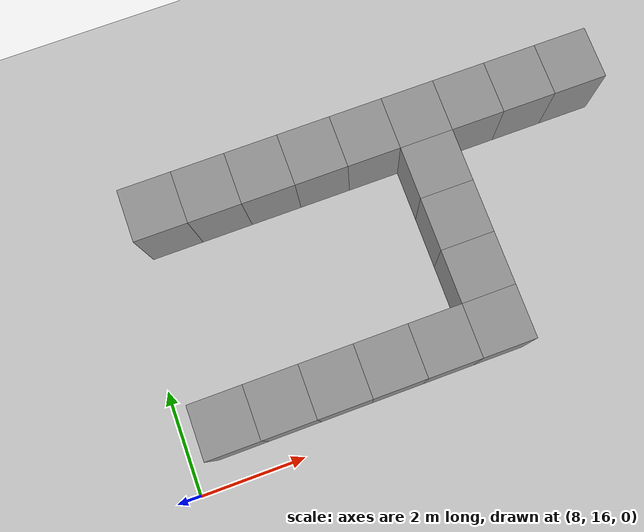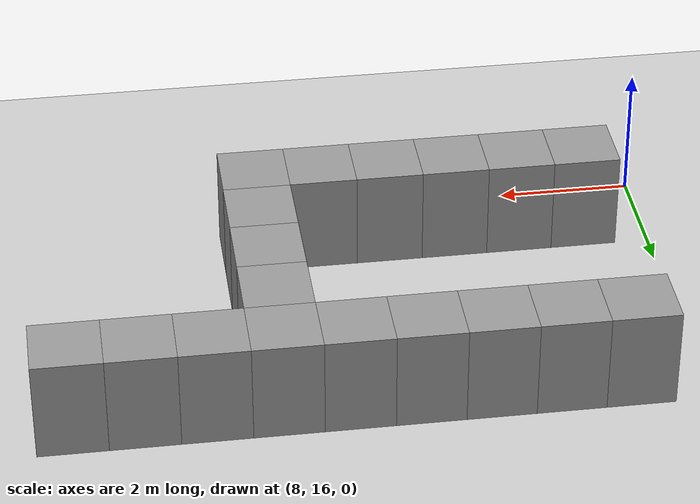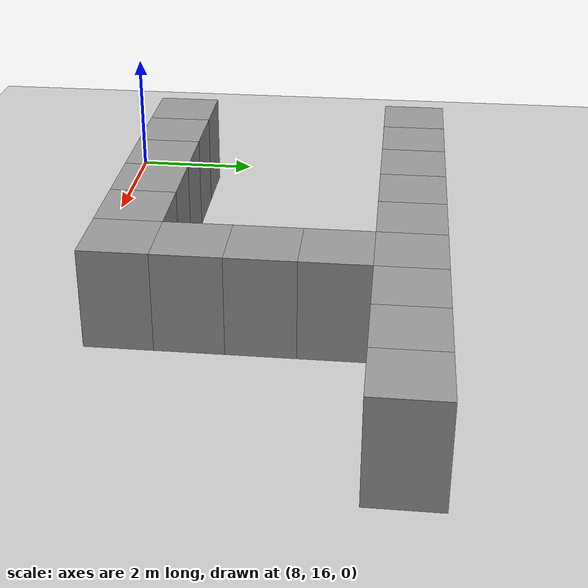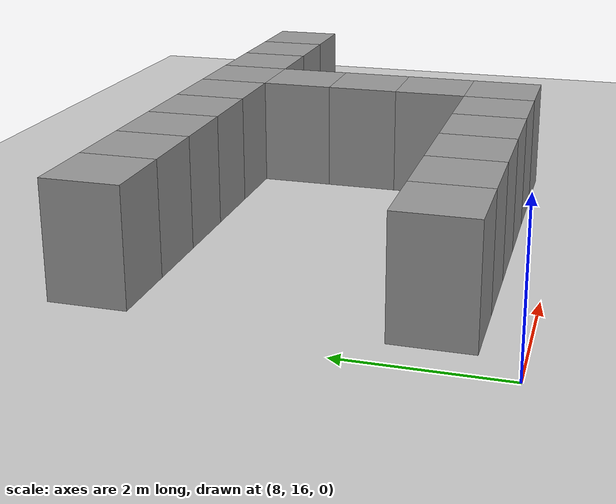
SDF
<sdf version="1.4">
 <world name="default">
  <model name="ground_plane">
   <static>1</static>
   <link name="link">
    <collision name="collision">
     <geometry><plane><normal>0 0 1</normal><size>100 100</size></plane></geometry>
     <surface><friction><ode><mu>100</mu><mu2>50</mu2></ode></friction></surface>
    </collision>
    <visual name="visual">
     <cast_shadows>0</cast_shadows>
     <geometry><plane><normal>0 0 1</normal><size>100 100</size></plane></geometry>
     <material>
      <script><uri>file://media/materials/scripts/gazebo.material</uri><name>Gazebo/Grey</name></script>
     </material>
    </visual>
    <velocity_decay><linear>0</linear><angular>0</angular></velocity_decay>
   </link>
  </model>
  <model name="unit_box_95">
   <pose>9 17 0.5 0 0 -3e-06</pose>
   <static>true</static>
   <link name="link">
    <inertial>
     <mass>1</mass>
     <inertia><ixx>1</ixx><ixy>0</ixy><ixz>0</ixz><iyy>1</iyy><iyz>0</iyz><izz>1</izz></inertia>
    </inertial>
    <collision name="collision"><geometry><box><size>1 1 2</size></box></geometry></collision>
    <visual name="visual">
     <geometry><box><size>1 1 2</size></box></geometry>
     <material>
      <script><uri>file://media/materials/scripts/gazebo.material</uri><name>Gazebo/Grey</name></script>
     </material>
    </visual>
    <velocity_decay><linear>0</linear><angular>0</angular></velocity_decay>
   </link>
   <static>0</static>
  </model>
  <model name="unit_box_112">
   <pose>9 21 0.5 0 -0 3e-06</pose>
   <static>true</static>
   <link name="link">
    <inertial>
     <mass>1</mass>
     <inertia><ixx>1</ixx><ixy>0</ixy><ixz>0</ixz><iyy>1</iyy><iyz>0</iyz><izz>1</izz></inertia>
    </inertial>
    <collision name="collision"><geometry><box><size>1 1 2</size></box></geometry></collision>
    <visual name="visual">
     <geometry><box><size>1 1 2</size></box></geometry>
     <material>
      <script><uri>file://media/materials/scripts/gazebo.material</uri><name>Gazebo/Grey</name></script>
     </material>
    </visual>
    <velocity_decay><linear>0</linear><angular>0</angular></velocity_decay>
   </link>
   <static>0</static>
  </model>
  <model name="unit_box_113">
   <pose>10 21 0.5 0 -0 1e-06</pose>
   <static>true</static>
   <link name="link">
    <inertial>
     <mass>1</mass>
     <inertia><ixx>1</ixx><ixy>0</ixy><ixz>0</ixz><iyy>1</iyy><iyz>0</iyz><izz>1</izz></inertia>
    </inertial>
    <collision name="collision"><geometry><box><size>1 1 2</size></box></geometry></collision>
    <visual name="visual">
     <geometry><box><size>1 1 2</size></box></geometry>
     <material>
      <script><uri>file://media/materials/scripts/gazebo.material</uri><name>Gazebo/Grey</name></script>
     </material>
    </visual>
    <velocity_decay><linear>0</linear><angular>0</angular></velocity_decay>
   </link>
   <static>0</static>
  </model>
  <model name="unit_box_114">
   <pose>11 21 0.5 0 -0 1e-06</pose>
   <static>true</static>
   <link name="link">
    <inertial>
     <mass>1</mass>
     <inertia><ixx>1</ixx><ixy>0</ixy><ixz>0</ixz><iyy>1</iyy><iyz>0</iyz><izz>1</izz></inertia>
    </inertial>
    <collision name="collision"><geometry><box><size>1 1 2</size></box></geometry></collision>
    <visual name="visual">
     <geometry><box><size>1 1 2</size></box></geometry>
     <material>
      <script><uri>file://media/materials/scripts/gazebo.material</uri><name>Gazebo/Grey</name></script>
     </material>
    </visual>
    <velocity_decay><linear>0</linear><angular>0</angular></velocity_decay>
   </link>
   <static>0</static>
  </model>
  <model name="unit_box_115">
   <pose>12 21 0.5 -0 -0 -2e-06</pose>
   <static>true</static>
   <link name="link">
    <inertial>
     <mass>1</mass>
     <inertia><ixx>1</ixx><ixy>0</ixy><ixz>0</ixz><iyy>1</iyy><iyz>0</iyz><izz>1</izz></inertia>
    </inertial>
    <collision name="collision"><geometry><box><size>1 1 2</size></box></geometry></collision>
    <visual name="visual">
     <geometry><box><size>1 1 2</size></box></geometry>
     <material>
      <script><uri>file://media/materials/scripts/gazebo.material</uri><name>Gazebo/Grey</name></script>
     </material>
    </visual>
    <velocity_decay><linear>0</linear><angular>0</angular></velocity_decay>
   </link>
   <static>0</static>
  </model>
  <model name="unit_box_116">
   <pose>13 21 0.5 0 0 -2e-06</pose>
   <static>true</static>
   <link name="link">
    <inertial>
     <mass>1</mass>
     <inertia><ixx>1</ixx><ixy>0</ixy><ixz>0</ixz><iyy>1</iyy><iyz>0</iyz><izz>1</izz></inertia>
    </inertial>
    <collision name="collision"><geometry><box><size>1 1 2</size></box></geometry></collision>
    <visual name="visual">
     <geometry><box><size>1 1 2</size></box></geometry>
     <material>
      <script><uri>file://media/materials/scripts/gazebo.material</uri><name>Gazebo/Grey</name></script>
     </material>
    </visual>
    <velocity_decay><linear>0</linear><angular>0</angular></velocity_decay>
   </link>
   <static>0</static>
  </model>
  <model name="unit_box_117">
   <pose>10 17 0.5 -0 -0 -2e-06</pose>
   <static>true</static>
   <link name="link">
    <inertial>
     <mass>1</mass>
     <inertia><ixx>1</ixx><ixy>0</ixy><ixz>0</ixz><iyy>1</iyy><iyz>0</iyz><izz>1</izz></inertia>
    </inertial>
    <collision name="collision"><geometry><box><size>1 1 2</size></box></geometry></collision>
    <visual name="visual">
     <geometry><box><size>1 1 2</size></box></geometry>
     <material>
      <script><uri>file://media/materials/scripts/gazebo.material</uri><name>Gazebo/Grey</name></script>
     </material>
    </visual>
    <velocity_decay><linear>0</linear><angular>0</angular></velocity_decay>
   </link>
   <static>0</static>
  </model>
  <model name="unit_box_118">
   <pose>11 17 0.5 -0 -0 -1e-06</pose>
   <static>true</static>
   <link name="link">
    <inertial>
     <mass>1</mass>
     <inertia><ixx>1</ixx><ixy>0</ixy><ixz>0</ixz><iyy>1</iyy><iyz>0</iyz><izz>1</izz></inertia>
    </inertial>
    <collision name="collision"><geometry><box><size>1 1 2</size></box></geometry></collision>
    <visual name="visual">
     <geometry><box><size>1 1 2</size></box></geometry>
     <material>
      <script><uri>file://media/materials/scripts/gazebo.material</uri><name>Gazebo/Grey</name></script>
     </material>
    </visual>
    <velocity_decay><linear>0</linear><angular>0</angular></velocity_decay>
   </link>
   <static>0</static>
  </model>
  <model name="unit_box_119">
   <pose>12 17 0.5 0 0 -2e-06</pose>
   <static>true</static>
   <link name="link">
    <inertial>
     <mass>1</mass>
     <inertia><ixx>1</ixx><ixy>0</ixy><ixz>0</ixz><iyy>1</iyy><iyz>0</iyz><izz>1</izz></inertia>
    </inertial>
    <collision name="collision"><geometry><box><size>1 1 2</size></box></geometry></collision>
    <visual name="visual">
     <geometry><box><size>1 1 2</size></box></geometry>
     <material>
      <script><uri>file://media/materials/scripts/gazebo.material</uri><name>Gazebo/Grey</name></script>
     </material>
    </visual>
    <velocity_decay><linear>0</linear><angular>0</angular></velocity_decay>
   </link>
   <static>0</static>
  </model>
  <model name="unit_box_120">
   <pose>13 17 0.5 0 -0 -2e-06</pose>
   <static>true</static>
   <link name="link">
    <inertial>
     <mass>1</mass>
     <inertia><ixx>1</ixx><ixy>0</ixy><ixz>0</ixz><iyy>1</iyy><iyz>0</iyz><izz>1</izz></inertia>
    </inertial>
    <collision name="collision"><geometry><box><size>1 1 2</size></box></geometry></collision>
    <visual name="visual">
     <geometry><box><size>1 1 2</size></box></geometry>
     <material>
      <script><uri>file://media/materials/scripts/gazebo.material</uri><name>Gazebo/Grey</name></script>
     </material>
    </visual>
    <velocity_decay><linear>0</linear><angular>0</angular></velocity_decay>
   </link>
   <static>0</static>
  </model>
  <model name="unit_box_121">
   <pose>14 21 0.5 0 0 -2e-06</pose>
   <static>true</static>
   <link name="link">
    <inertial>
     <mass>1</mass>
     <inertia><ixx>1</ixx><ixy>0</ixy><ixz>0</ixz><iyy>1</iyy><iyz>0</iyz><izz>1</izz></inertia>
    </inertial>
    <collision name="collision"><geometry><box><size>1 1 2</size></box></geometry></collision>
    <visual name="visual">
     <geometry><box><size>1 1 2</size></box></geometry>
     <material>
      <script><uri>file://media/materials/scripts/gazebo.material</uri><name>Gazebo/Grey</name></script>
     </material>
    </visual>
    <velocity_decay><linear>0</linear><angular>0</angular></velocity_decay>
   </link>
   <static>0</static>
  </model>
  <model name="unit_box_122">
   <pose>14 20 0.5 0 0 -4e-06</pose>
   <static>true</static>
   <link name="link">
    <inertial>
     <mass>1</mass>
     <inertia><ixx>1</ixx><ixy>0</ixy><ixz>0</ixz><iyy>1</iyy><iyz>0</iyz><izz>1</izz></inertia>
    </inertial>
    <collision name="collision"><geometry><box><size>1 1 2</size></box></geometry></collision>
    <visual name="visual">
     <geometry><box><size>1 1 2</size></box></geometry>
     <material>
      <script><uri>file://media/materials/scripts/gazebo.material</uri><name>Gazebo/Grey</name></script>
     </material>
    </visual>
    <velocity_decay><linear>0</linear><angular>0</angular></velocity_decay>
   </link>
   <static>0</static>
  </model>
  <model name="unit_box_123">
   <pose>14 19 0.5 0 0 -4e-06</pose>
   <static>true</static>
   <link name="link">
    <inertial>
     <mass>1</mass>
     <inertia><ixx>1</ixx><ixy>0</ixy><ixz>0</ixz><iyy>1</iyy><iyz>0</iyz><izz>1</izz></inertia>
    </inertial>
    <collision name="collision"><geometry><box><size>1 1 2</size></box></geometry></collision>
    <visual name="visual">
     <geometry><box><size>1 1 2</size></box></geometry>
     <material>
      <script><uri>file://media/materials/scripts/gazebo.material</uri><name>Gazebo/Grey</name></script>
     </material>
    </visual>
    <velocity_decay><linear>0</linear><angular>0</angular></velocity_decay>
   </link>
   <static>0</static>
  </model>
  <model name="unit_box_124">
   <pose>14 18 0.5 0 -0 -4e-06</pose>
   <static>true</static>
   <link name="link">
    <inertial>
     <mass>1</mass>
     <inertia><ixx>1</ixx><ixy>0</ixy><ixz>0</ixz><iyy>1</iyy><iyz>0</iyz><izz>1</izz></inertia>
    </inertial>
    <collision name="collision"><geometry><box><size>1 1 2</size></box></geometry></collision>
    <visual name="visual">
     <geometry><box><size>1 1 2</size></box></geometry>
     <material>
      <script><uri>file://media/materials/scripts/gazebo.material</uri><name>Gazebo/Grey</name></script>
     </material>
    </visual>
    <velocity_decay><linear>0</linear><angular>0</angular></velocity_decay>
   </link>
   <static>0</static>
  </model>
  <model name="unit_box_125">
   <pose>14 17 0.5 0 -0 1e-06</pose>
   <static>true</static>
   <link name="link">
    <inertial>
     <mass>1</mass>
     <inertia><ixx>1</ixx><ixy>0</ixy><ixz>0</ixz><iyy>1</iyy><iyz>0</iyz><izz>1</izz></inertia>
    </inertial>
    <collision name="collision"><geometry><box><size>1 1 2</size></box></geometry></collision>
    <visual name="visual">
     <geometry><box><size>1 1 2</size></box></geometry>
     <material>
      <script><uri>file://media/materials/scripts/gazebo.material</uri><name>Gazebo/Grey</name></script>
     </material>
    </visual>
    <velocity_decay><linear>0</linear><angular>0</angular></velocity_decay>
   </link>
   <static>0</static>
  </model>
  <model name="unit_box_134">
   <pose>15 21 0.5 0 -0 1e-06</pose>
   <static>true</static>
   <link name="link">
    <inertial>
     <mass>1</mass>
     <inertia><ixx>1</ixx><ixy>0</ixy><ixz>0</ixz><iyy>1</iyy><iyz>0</iyz><izz>1</izz></inertia>
    </inertial>
    <collision name="collision"><geometry><box><size>1 1 2</size></box></geometry></collision>
    <visual name="visual">
     <geometry><box><size>1 1 2</size></box></geometry>
     <material>
      <script><uri>file://media/materials/scripts/gazebo.material</uri><name>Gazebo/Grey</name></script>
     </material>
    </visual>
    <velocity_decay><linear>0</linear><angular>0</angular></velocity_decay>
   </link>
   <static>0</static>
  </model>
  <model name="unit_box_135">
   <pose>16 21 0.5 0 -0 1e-06</pose>
   <static>true</static>
   <link name="link">
    <inertial>
     <mass>1</mass>
     <inertia><ixx>1</ixx><ixy>0</ixy><ixz>0</ixz><iyy>1</iyy><iyz>0</iyz><izz>1</izz></inertia>
    </inertial>
    <collision name="collision"><geometry><box><size>1 1 2</size></box></geometry></collision>
    <visual name="visual">
     <geometry><box><size>1 1 2</size></box></geometry>
     <material>
      <script><uri>file://media/materials/scripts/gazebo.material</uri><name>Gazebo/Grey</name></script>
     </material>
    </visual>
    <velocity_decay><linear>0</linear><angular>0</angular></velocity_decay>
   </link>
   <static>0</static>
  </model>
  <model name="unit_box_136">
   <pose>17 21 0.5 0 -0 3e-06</pose>
   <static>true</static>
   <link name="link">
    <inertial>
     <mass>1</mass>
     <inertia><ixx>1</ixx><ixy>0</ixy><ixz>0</ixz><iyy>1</iyy><iyz>0</iyz><izz>1</izz></inertia>
    </inertial>
    <collision name="collision"><geometry><box><size>1 1 2</size></box></geometry></collision>
    <visual name="visual">
     <geometry><box><size>1 1 2</size></box></geometry>
     <material>
      <script><uri>file://media/materials/scripts/gazebo.material</uri><name>Gazebo/Grey</name></script>
     </material>
    </visual>
    <velocity_decay><linear>0</linear><angular>0</angular></velocity_decay>
   </link>
   <static>0</static>
  </model>
 </world>
</sdf>
